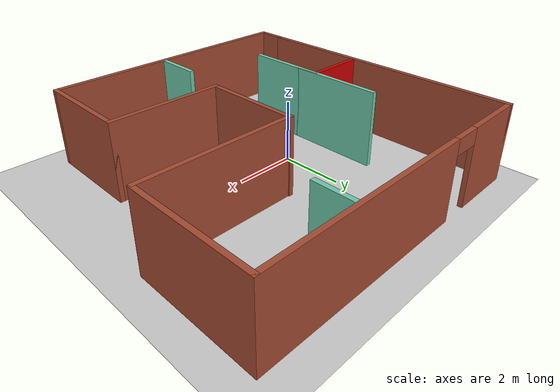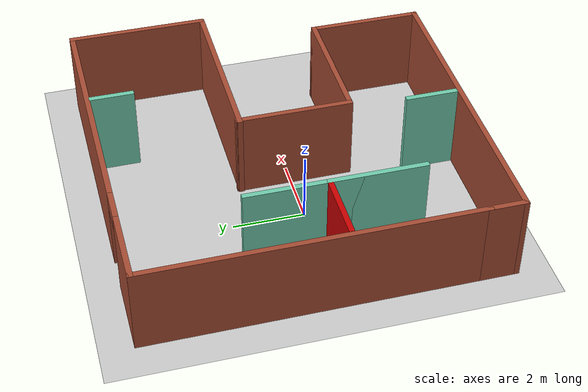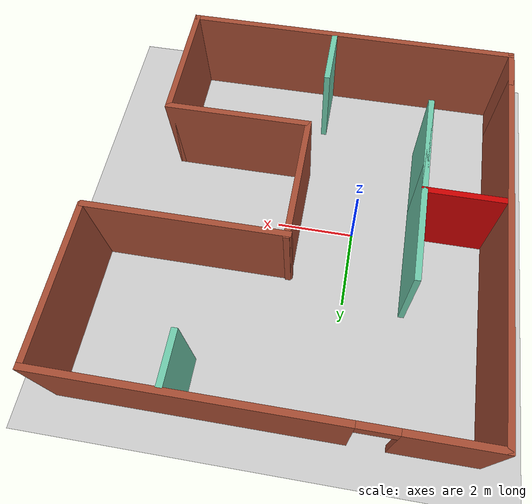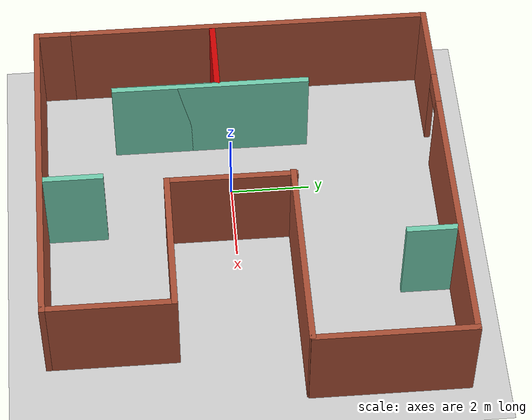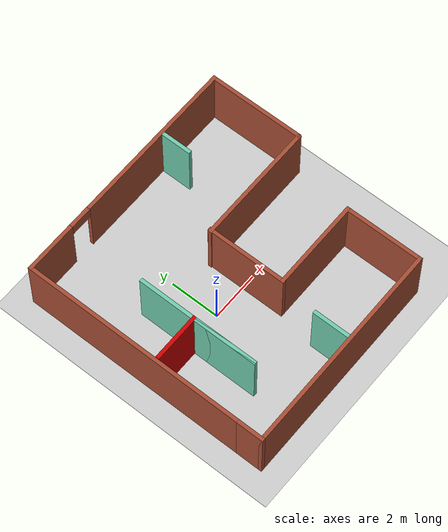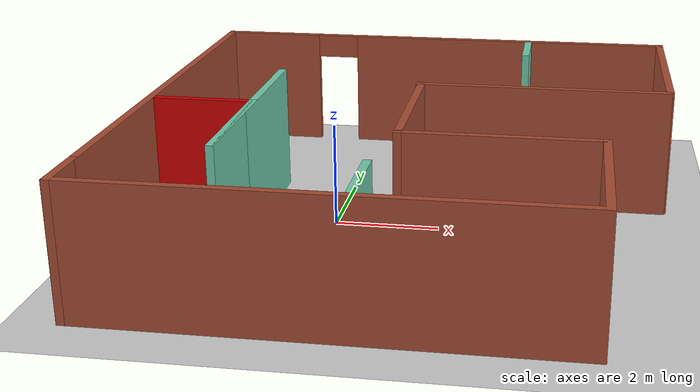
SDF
<sdf version="1.7">
 <world name="default">
  <light name="sun" type="directional">
   <pose>0 0 10 0 -0 0</pose>
   <diffuse>0.8 0.8 0.8 1</diffuse>
   <specular>0.2 0.2 0.2 1</specular>
   <attenuation>
    <range>1000</range>
    <constant>0.9</constant>
    <linear>0.01</linear>
    <quadratic>0.001</quadratic>
   </attenuation>
   <direction>-0.5 0.1 -0.9</direction>
   <spot><inner_angle>0</inner_angle><outer_angle>0</outer_angle><falloff>0</falloff></spot>
  </light>
  <model name="ground_plane">
   <static>1</static>
   <link name="link">
    <collision name="collision">
     <geometry><plane><normal>0 0 1</normal><size>100 100</size></plane></geometry>
     <surface>
      <contact><collide_bitmask>65535</collide_bitmask></contact>
      <friction><ode><mu>100</mu><mu2>50</mu2></ode></friction>
     </surface>
    </collision>
    <visual name="visual">
     <cast_shadows>0</cast_shadows>
     <geometry><plane><normal>0 0 1</normal><size>100 100</size></plane></geometry>
     <material>
      <script><uri>file://media/materials/scripts/gazebo.material</uri><name>Gazebo/Grey</name></script>
     </material>
    </visual>
   </link>
  </model>
  <gravity>0 0 -9.8</gravity>
  <magnetic_field>6e-06 2.3e-05 -4.2e-05</magnetic_field>
  <atmosphere type="adiabatic"/>
  <physics type="ode">
   <max_step_size>0.001</max_step_size>
   <real_time_factor>1</real_time_factor>
   <real_time_update_rate>1000</real_time_update_rate>
  </physics>
  <scene><ambient>0.4 0.4 0.4 1</ambient><background>0.7 0.7 0.7 1</background><shadows>1</shadows></scene>
  <spherical_coordinates>
   <surface_model>EARTH_WGS84</surface_model>
   <latitude_deg>0</latitude_deg>
   <longitude_deg>0</longitude_deg>
   <elevation>0</elevation>
   <heading_deg>0</heading_deg>
  </spherical_coordinates>
  <model name="house2">
   <pose>1.40692 0.24976 0 0 -0 0</pose>
   <link name="Wall_0">
    <collision name="Wall_0_Collision">
     <geometry><box><size>9.25 0.15 2.5</size></box></geometry>
     <pose>0 0 1.25 0 -0 0</pose>
    </collision>
    <visual name="Wall_0_Visual">
     <pose>0 0 1.25 0 -0 0</pose>
     <geometry><box><size>9.25 0.15 2.5</size></box></geometry>
     <material>
      <script><uri>file://media/materials/scripts/gazebo.material</uri><name>Gazebo/Bricks</name></script>
      <ambient>1 1 1 1</ambient>
     </material>
     <meta><layer>0</layer></meta>
    </visual>
    <pose>-4.925 0.475 0 0 -0 1.5708</pose>
   </link>
   <link name="Wall_1">
    <pose>0 5.025 0 0 -0 0</pose>
    <visual name="Wall_1_Visual_0">
     <pose>-3.92072 0 1.25 0 -0 0</pose>
     <geometry><box><size>2.15855 0.15 2.5</size></box></geometry>
     <material>
      <script><uri>file://media/materials/scripts/gazebo.material</uri><name>Gazebo/Bricks</name></script>
      <ambient>1 1 1 1</ambient>
     </material>
     <meta><layer>0</layer></meta>
    </visual>
    <collision name="Wall_1_Collision_0">
     <geometry><box><size>2.15855 0.15 2.5</size></box></geometry>
     <pose>-3.92072 0 1.25 0 -0 0</pose>
    </collision>
    <visual name="Wall_1_Visual_1">
     <pose>1.52928 0 1.25 0 -0 0</pose>
     <geometry><box><size>6.94145 0.15 2.5</size></box></geometry>
     <material>
      <script><uri>file://media/materials/scripts/gazebo.material</uri><name>Gazebo/Bricks</name></script>
      <ambient>1 1 1 1</ambient>
     </material>
     <meta><layer>0</layer></meta>
    </visual>
    <collision name="Wall_1_Collision_1">
     <geometry><box><size>6.94145 0.15 2.5</size></box></geometry>
     <pose>1.52928 0 1.25 0 -0 0</pose>
    </collision>
    <visual name="Wall_1_Visual_2">
     <pose>-2.39145 0 2.25 0 -0 0</pose>
     <geometry><box><size>0.9 0.15 0.5</size></box></geometry>
     <material>
      <script><uri>file://media/materials/scripts/gazebo.material</uri><name>Gazebo/Bricks</name></script>
      <ambient>1 1 1 1</ambient>
     </material>
     <meta><layer>0</layer></meta>
    </visual>
    <collision name="Wall_1_Collision_2">
     <geometry><box><size>0.9 0.15 0.5</size></box></geometry>
     <pose>-2.39145 0 2.25 0 -0 0</pose>
    </collision>
   </link>
   <link name="Wall_10">
    <collision name="Wall_10_Collision">
     <geometry><box><size>1.5 0.15 2.5</size></box></geometry>
     <pose>0 0 1.25 0 -0 0</pose>
    </collision>
    <visual name="Wall_10_Visual">
     <pose>0 0 1.25 0 -0 0</pose>
     <geometry><box><size>1.5 0.15 2.5</size></box></geometry>
     <material>
      <script><uri>file://media/materials/scripts/gazebo.material</uri><name>Gazebo/Grey</name></script>
      <ambient>0.435294 0.796078 0.67451 1</ambient>
     </material>
     <meta><layer>0</layer></meta>
    </visual>
    <pose>-0.175186 -4.20966 0 0 -0 1.5708</pose>
   </link>
   <link name="Wall_12">
    <collision name="Wall_12_Collision">
     <geometry><box><size>5 0.15 2.5</size></box></geometry>
     <pose>0 0 1.25 0 -0 0</pose>
    </collision>
    <visual name="Wall_12_Visual">
     <pose>0 0 1.25 0 -0 0</pose>
     <geometry><box><size>5 0.15 2.5</size></box></geometry>
     <material>
      <script><uri>file://media/materials/scripts/gazebo.material</uri><name>Gazebo/Grey</name></script>
      <ambient>0.435294 0.796078 0.67451 1</ambient>
     </material>
     <meta><layer>0</layer></meta>
    </visual>
    <pose>-2.91913 -0.660875 0 0 -0 -1.5708</pose>
   </link>
   <link name="Wall_13">
    <collision name="Wall_13_Collision">
     <geometry><box><size>2.75 0.15 2.5</size></box></geometry>
     <pose>0 0 1.25 0 -0 0</pose>
    </collision>
    <visual name="Wall_13_Visual">
     <pose>0 0 1.25 0 -0 0</pose>
     <geometry><box><size>2.75 0.15 2.5</size></box></geometry>
     <material>
      <script><uri>file://media/materials/scripts/gazebo.material</uri><name>Gazebo/Grey</name></script>
      <ambient>0.435294 0.796078 0.67451 1</ambient>
     </material>
     <meta><layer>0</layer></meta>
    </visual>
    <pose>-2.91913 -1.78588 0 0 -0 1.5708</pose>
   </link>
   <link name="Wall_14">
    <collision name="Wall_14_Collision">
     <geometry><box><size>2 0.15 2.5</size></box></geometry>
     <pose>0 0 1.25 0 -0 0</pose>
    </collision>
    <visual name="Wall_14_Visual">
     <pose>0 0 1.25 0 -0 0</pose>
     <geometry><box><size>2 0.15 2.5</size></box></geometry>
     <material>
      <script><uri>file://media/materials/scripts/gazebo.material</uri><name>Gazebo/Grey</name></script>
      <ambient>0.8 0 0 1</ambient>
     </material>
     <meta><layer>0</layer></meta>
    </visual>
    <pose>-3.84413 -0.485875 0 0 -0 3.14159</pose>
   </link>
   <link name="Wall_16">
    <collision name="Wall_16_Collision">
     <geometry><box><size>1.25 0.15 2.5</size></box></geometry>
     <pose>0 0 1.25 0 -0 0</pose>
    </collision>
    <visual name="Wall_16_Visual">
     <pose>0 0 1.25 0 -0 0</pose>
     <geometry><box><size>1.25 0.15 2.5</size></box></geometry>
     <material>
      <script><uri>file://media/materials/scripts/gazebo.material</uri><name>Gazebo/Grey</name></script>
      <ambient>0.435294 0.796078 0.67451 1</ambient>
     </material>
     <meta><layer>0</layer></meta>
    </visual>
    <pose>2.0059 4.34504 0 0 -0 -1.5708</pose>
   </link>
   <link name="Wall_2">
    <collision name="Wall_2_Collision">
     <geometry><box><size>3.95357 0.15 2.5</size></box></geometry>
     <pose>0 0 1.25 0 -0 0</pose>
    </collision>
    <visual name="Wall_2_Visual">
     <pose>0 0 1.25 0 -0 0</pose>
     <geometry><box><size>3.95357 0.15 2.5</size></box></geometry>
     <material>
      <script><uri>file://media/materials/scripts/gazebo.material</uri><name>Gazebo/Bricks</name></script>
      <ambient>1 1 1 1</ambient>
     </material>
     <meta><layer>0</layer></meta>
    </visual>
    <pose>4.925 3.12321 0 0 -0 -1.5708</pose>
   </link>
   <link name="Wall_3">
    <collision name="Wall_3_Collision">
     <geometry><box><size>5 0.15 2.5</size></box></geometry>
     <pose>0 0 1.25 0 -0 0</pose>
    </collision>
    <visual name="Wall_3_Visual">
     <pose>0 0 1.25 0 -0 0</pose>
     <geometry><box><size>5 0.15 2.5</size></box></geometry>
     <material>
      <script><uri>file://media/materials/scripts/gazebo.material</uri><name>Gazebo/Bricks</name></script>
      <ambient>1 1 1 1</ambient>
     </material>
     <meta><layer>0</layer></meta>
    </visual>
    <pose>2.46482 1.18625 0 0 -0 3.14159</pose>
   </link>
   <link name="Wall_4">
    <collision name="Wall_4_Collision">
     <geometry><box><size>3.29643 0.15 2.5</size></box></geometry>
     <pose>0 0 1.25 0 -0 0</pose>
    </collision>
    <visual name="Wall_4_Visual">
     <pose>0 0 1.25 0 -0 0</pose>
     <geometry><box><size>3.29643 0.15 2.5</size></box></geometry>
     <material>
      <script><uri>file://media/materials/scripts/gazebo.material</uri><name>Gazebo/Bricks</name></script>
      <ambient>1 1 1 1</ambient>
     </material>
     <meta><layer>0</layer></meta>
    </visual>
    <pose>0.075 -0.351787 0 0 -0 -1.5708</pose>
   </link>
   <link name="Wall_5">
    <collision name="Wall_5_Collision">
     <geometry><box><size>3.75 0.15 2.5</size></box></geometry>
     <pose>0 0 1.25 0 -0 0</pose>
    </collision>
    <visual name="Wall_5_Visual">
     <pose>0 0 1.25 0 -0 0</pose>
     <geometry><box><size>3.75 0.15 2.5</size></box></geometry>
     <material>
      <script><uri>file://media/materials/scripts/gazebo.material</uri><name>Gazebo/Bricks</name></script>
      <ambient>1 1 1 1</ambient>
     </material>
     <meta><layer>0</layer></meta>
    </visual>
    <pose>1.875 -1.925 0 0 -0 0</pose>
   </link>
   <link name="Wall_6">
    <collision name="Wall_6_Collision">
     <geometry><box><size>3.25 0.15 2.5</size></box></geometry>
     <pose>0 0 1.25 0 -0 0</pose>
    </collision>
    <visual name="Wall_6_Visual">
     <pose>0 0 1.25 0 -0 0</pose>
     <geometry><box><size>3.25 0.15 2.5</size></box></geometry>
     <material>
      <script><uri>file://media/materials/scripts/gazebo.material</uri><name>Gazebo/Bricks</name></script>
      <ambient>1 1 1 1</ambient>
     </material>
     <meta><layer>0</layer></meta>
    </visual>
    <pose>3.675 -3.475 0 0 -0 -1.5708</pose>
   </link>
   <link name="Wall_7">
    <collision name="Wall_7_Collision">
     <geometry><box><size>8.75 0.15 2.5</size></box></geometry>
     <pose>0 0 1.25 0 -0 0</pose>
    </collision>
    <visual name="Wall_7_Visual">
     <pose>0 0 1.25 0 -0 0</pose>
     <geometry><box><size>8.75 0.15 2.5</size></box></geometry>
     <material>
      <script><uri>file://media/materials/scripts/gazebo.material</uri><name>Gazebo/Bricks</name></script>
      <ambient>1 1 1 1</ambient>
     </material>
     <meta><layer>0</layer></meta>
    </visual>
    <pose>-0.625 -5.025 0 0 -0 3.14159</pose>
   </link>
   <link name="Wall_8">
    <collision name="Wall_8_Collision">
     <geometry><box><size>1.1 0.15 2.5</size></box></geometry>
     <pose>0 0 1.25 0 -0 0</pose>
    </collision>
    <visual name="Wall_8_Visual">
     <pose>0 0 1.25 0 -0 0</pose>
     <geometry><box><size>1.1 0.15 2.5</size></box></geometry>
     <material>
      <script><uri>file://media/materials/scripts/gazebo.material</uri><name>Gazebo/Bricks</name></script>
      <ambient>1 1 1 1</ambient>
     </material>
     <meta><layer>0</layer></meta>
    </visual>
    <pose>-4.925 -4.55 0 0 -0 1.5708</pose>
   </link>
   <static>1</static>
  </model>
 </world>
</sdf>
